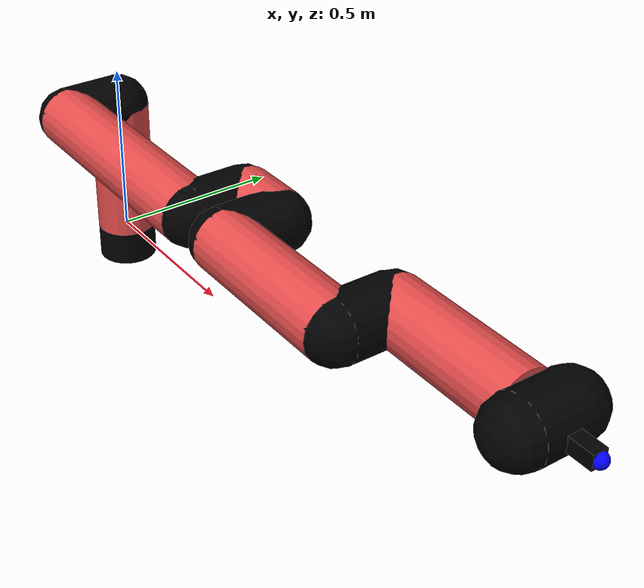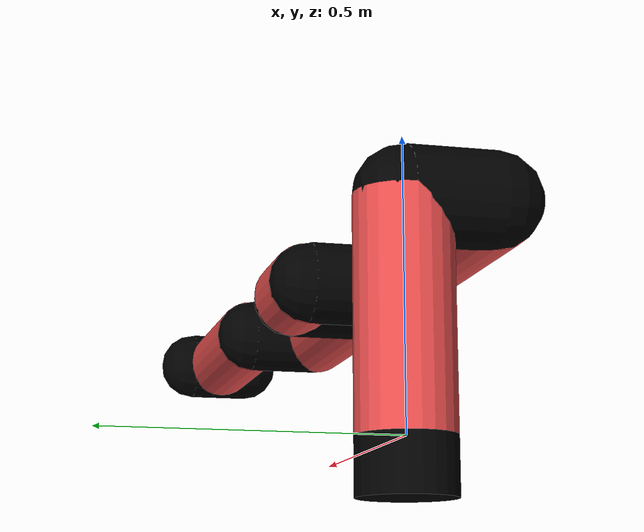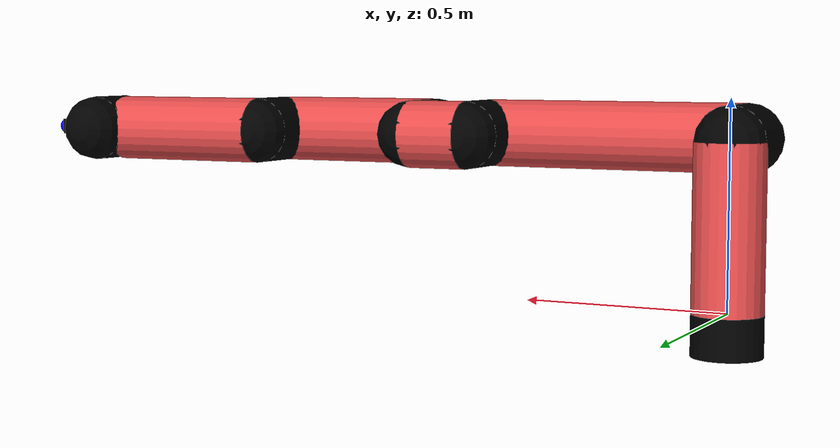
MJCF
<mujoco model="manipulator">
		<compiler angle="degree" coordinate="local" inertiafromgeom="auto" meshdir="meshes/"/>
		<option gravity="0 0 0" integrator="RK4" iterations="30" timestep="0.01"/>

		<default>
		<joint armature="1" limited="true" stiffness="10" damping="15" frictionloss="5.0"/>
		<geom conaffinity="1" condim="3" contype="1" friction=".5 .1 .1" margin="0.002"/>
		<motor ctrllimited="true"/>
		<position ctrllimited="true"/>
		</default>

		<asset>
		<texture builtin="gradient" height="100" rgb1="1.0 1.0 1.0" rgb2="1.0 1.0 1.0" type="skybox" width="100"/>
		<texture builtin="flat" height="32" name="arm_tex" rgb1="0.9 0.3 0.3" type="2d" width="32"/>
		<texture builtin="flat" height="32" name="gripper_tex" rgb1="0.0 0.0 0.0" type="cube" width="32"/>

		<material name="arm_mat" shininess="0.1" specular="0.1" texture="arm_tex"/>
		<material name="gripper_mat" shininess="1" specular="1" texture="gripper_tex"/>
		</asset>

		<worldbody>
		<light cutoff="45" diffuse=".8 .8 .8" dir="0 0.16 -1" directional="false" name="light" pos="0 -2.0 8.0" specular="0.3 0.3 0.3"/>

		<body name="base_link" pos="0 0 -0.1">
		<geom fromto="0 0 0 0 0 0.1" material="arm_mat" name="base_link" rgba="0.0 0.0 0.0 1" size="0.085" type="cylinder"/>
		</body>

		<body name="l1" pos="0 0 0">
<geom fromto="0 0 0 0 0 0.4" material="arm_mat" name="l1" rgba="0.9 0.3 0.3 1" size="0.085" type="cylinder"/>
<geom fromto="0 0 0.4 0 -0.16 0.4" material="arm_mat" name="l1_ex" rgba="0.0 0.0 0.0 1" size="0.085" type="capsule"/>
<joint axis="0 0 1" name="j1" pos="0 0 0" range="-90 90" damping="41.83" frictionloss="8.09"/>

<body name="l2" pos="0 -0.16 0.4">
<geom fromto="0 0 0 0.67 0 0" material="arm_mat" name="l2" rgba="0.9 0.3 0.3 1" size="0.085" type="cylinder"/>
<geom fromto="0.67 0 0 0.67 0.16 0" material="arm_mat" name="l2_ex" rgba="0.0 0.0 0.0 1" size="0.085" type="capsule"/>
<joint axis="0.0 1.0 0.0" name="j2" pos="0 0 0" range="-90 60" damping="25.61" frictionloss="10.85"/>

<body name="l3" pos="0.67 0.16 0">
<geom fromto="0 0 0 0.15 0 0" material="arm_mat" name="l3" rgba="0.9 0.3 0.3 1" size="0.085" type="cylinder"/>
<geom fromto="0.15 0 0 0.15 -0.16 0" material="arm_mat" name="l3_ex" rgba="0.0 0.0 0.0 1" size="0.085" type="capsule"/>
<joint axis="0.0 1.0 0.0" name="j3" pos="0 0 0" range="-30 60" damping="21.6" frictionloss="14.69"/>

<body name="l4" pos="0.15 -0.16 0">
<geom fromto="0 0 0 0.45 0 0" material="arm_mat" name="l4" rgba="0.9 0.3 0.3 1" size="0.085" type="cylinder"/>
<geom fromto="0.45 0 0 0.45 0.16 0" material="arm_mat" name="l4_ex" rgba="0.0 0.0 0.0 1" size="0.085" type="capsule"/>
<joint axis="0.0 1.0 0.0" name="j4" pos="0 0 0" range="-30 60" damping="28.48" frictionloss="7.33"/>

<body name="l5" pos="0.45 0.16 0">
<geom fromto="0 0 0 0.42 0 0" material="arm_mat" name="l5" rgba="0.9 0.3 0.3 1" size="0.085" type="cylinder"/>
<joint axis="0.0 1.0 0.0" name="j5" pos="0 0 0" range="-30 60" damping="12.45" frictionloss="12.04"/>

<body name="gripper" pos="0.42 0 0">
<geom fromto="0.05 -0.07 0 0.05 0.07 0" material="gripper_mat" name="gripper" rgba="0.0 0.0 0.0 1" size="0.085" type="capsule"/><joint axis="1 0 0" name="j6" pos="0 0 0" range="-90 90" damping="15" frictionloss="5.0"/><body name="finger" pos="0.1 0 0">
<geom fromto="0 0.0 0 0.1 0.0 0" material="gripper_mat" name="finger" rgba="0.0 0.0 0.0 1" size="0.020 0.06 0.06" type="box"/>
</body>
<site name="current" pos="0.2 0. 0.0" rgba="0. 0. 1.0 1" size="0.02" type="sphere"/>
</body>
</body>
</body>
</body>
</body>
</body>
</worldbody>
<actuator>
<motor ctrllimited="true" ctrlrange="-1.0 1.0" joint="j1" gear="91.06"/>
<motor ctrllimited="true" ctrlrange="-1.0 1.0" joint="j2" gear="53.48"/>
<motor ctrllimited="true" ctrlrange="-1.0 1.0" joint="j3" gear="86.19"/>
<motor ctrllimited="true" ctrlrange="-1.0 1.0" joint="j4" gear="107.55"/>
<motor ctrllimited="true" ctrlrange="-1.0 1.0" joint="j5" gear="40.8"/>
<motor ctrllimited="true" ctrlrange="-1.0 1.0" joint="j6" gear="80"/>
</actuator>
</mujoco>
